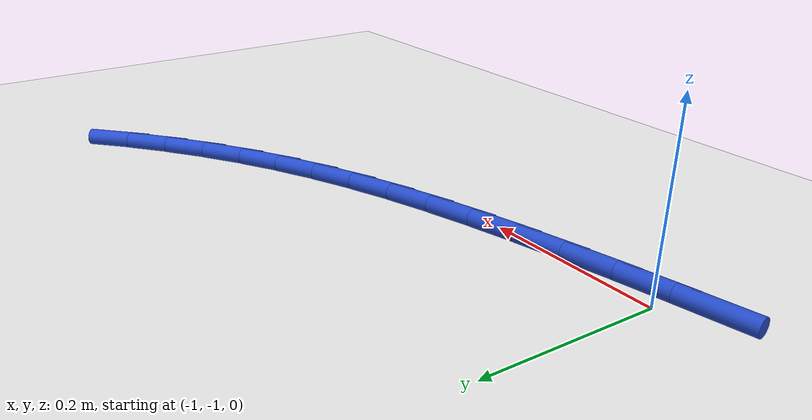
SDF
<sdf version="1.6">
 <world name="default">
  <model name="ground_plane">
   <static>1</static>
   <link name="link">
    <collision name="collision">
     <geometry><plane><normal>0 0 1</normal><size>100 100</size></plane></geometry>
     <surface><friction><ode><mu>100</mu><mu2>50</mu2></ode></friction></surface>
    </collision>
    <visual name="visual">
     <cast_shadows>0</cast_shadows>
     <geometry><plane><normal>0 0 1</normal><size>100 100</size></plane></geometry>
     <material>
      <script><uri>file://media/materials/scripts/gazebo.material</uri><name>Gazebo/WhiteGlow</name></script>
     </material>
    </visual>
   </link>
  </model>
  <model name="line">
   <link name="link_91">
    <pose>-1.0428500433935866 -1.0322535948756941 0.01 0 1.57 0.1760739674078798</pose>
    <collision name="collision">
     <geometry><cylinder><radius>0.01</radius><length>0.08</length></cylinder></geometry>
    </collision>
    <visual name="visual">
     <material>
      <script><name>Gazebo/Blue</name><uri>file://media/materials/scripts/gazebo.material</uri></script>
     </material>
     <geometry><cylinder><radius>0.01</radius><length>0.08</length></cylinder></geometry>
    </visual>
   </link>
   <link name="link_92">
    <pose>-0.9853075734768719 -1.0220158475698184 0.01 0 1.57 0.18663902751711337</pose>
    <collision name="collision">
     <geometry><cylinder><radius>0.01</radius><length>0.08</length></cylinder></geometry>
    </collision>
    <visual name="visual">
     <material>
      <script><name>Gazebo/Blue</name><uri>file://media/materials/scripts/gazebo.material</uri></script>
     </material>
     <geometry><cylinder><radius>0.01</radius><length>0.08</length></cylinder></geometry>
    </visual>
   </link>
   <link name="link_93">
    <pose>-0.9289475941057282 -1.0113730099068052 0.01 0 1.57 0.2026990869845861</pose>
    <collision name="collision">
     <geometry><cylinder><radius>0.01</radius><length>0.08</length></cylinder></geometry>
    </collision>
    <visual name="visual">
     <material>
      <script><name>Gazebo/Blue</name><uri>file://media/materials/scripts/gazebo.material</uri></script>
     </material>
     <geometry><cylinder><radius>0.01</radius><length>0.08</length></cylinder></geometry>
    </visual>
   </link>
   <link name="link_94">
    <pose>-0.8737443226644982 -1.000027546518124 0.01 0 1.57 0.22446915927239341</pose>
    <collision name="collision">
     <geometry><cylinder><radius>0.01</radius><length>0.08</length></cylinder></geometry>
    </collision>
    <visual name="visual">
     <material>
      <script><name>Gazebo/Blue</name><uri>file://media/materials/scripts/gazebo.material</uri></script>
     </material>
     <geometry><cylinder><radius>0.01</radius><length>0.08</length></cylinder></geometry>
    </visual>
   </link>
   <link name="link_95">
    <pose>-0.8196719765375219 -0.9876819220352449 0.01 0 1.57 0.2521004670283223</pose>
    <collision name="collision">
     <geometry><cylinder><radius>0.01</radius><length>0.08</length></cylinder></geometry>
    </collision>
    <visual name="visual">
     <material>
      <script><name>Gazebo/Blue</name><uri>file://media/materials/scripts/gazebo.material</uri></script>
     </material>
     <geometry><cylinder><radius>0.01</radius><length>0.08</length></cylinder></geometry>
    </visual>
   </link>
   <link name="link_96">
    <pose>-0.76670477310914 -0.9740386010896376 0.01 0 1.57 0.28565091467254655</pose>
    <collision name="collision">
     <geometry><cylinder><radius>0.01</radius><length>0.08</length></cylinder></geometry>
    </collision>
    <visual name="visual">
     <material>
      <script><name>Gazebo/Blue</name><uri>file://media/materials/scripts/gazebo.material</uri></script>
     </material>
     <geometry><cylinder><radius>0.01</radius><length>0.08</length></cylinder></geometry>
    </visual>
   </link>
   <link name="link_97">
    <pose>-0.7148169297636946 -0.9588000483127717 0.01 0 1.57 0.3250499615484393</pose>
    <collision name="collision">
     <geometry><cylinder><radius>0.01</radius><length>0.08</length></cylinder></geometry>
    </collision>
    <visual name="visual">
     <material>
      <script><name>Gazebo/Blue</name><uri>file://media/materials/scripts/gazebo.material</uri></script>
     </material>
     <geometry><cylinder><radius>0.01</radius><length>0.08</length></cylinder></geometry>
    </visual>
   </link>
   <link name="link_98">
    <pose>-0.6639826638855261 -0.9416687283361168 0.01 0 1.57 0.37006155643512867</pose>
    <collision name="collision">
     <geometry><cylinder><radius>0.01</radius><length>0.08</length></cylinder></geometry>
    </collision>
    <visual name="visual">
     <material>
      <script><name>Gazebo/Blue</name><uri>file://media/materials/scripts/gazebo.material</uri></script>
     </material>
     <geometry><cylinder><radius>0.01</radius><length>0.08</length></cylinder></geometry>
    </visual>
   </link>
   <link name="link_99">
    <pose>-0.6141761928589762 -0.9223471057911435 0.01 0 1.57 0.4202515895418626</pose>
    <collision name="collision">
     <geometry><cylinder><radius>0.01</radius><length>0.08</length></cylinder></geometry>
    </collision>
    <visual name="visual">
     <material>
      <script><name>Gazebo/Blue</name><uri>file://media/materials/scripts/gazebo.material</uri></script>
     </material>
     <geometry><cylinder><radius>0.01</radius><length>0.08</length></cylinder></geometry>
    </visual>
   </link>
   <link name="link_100">
    <pose>-0.5653717340683845 -0.9005376453093206 0.01 0 1.57 0.4749687367432126</pose>
    <collision name="collision">
     <geometry><cylinder><radius>0.01</radius><length>0.08</length></cylinder></geometry>
    </collision>
    <visual name="visual">
     <material>
      <script><name>Gazebo/Blue</name><uri>file://media/materials/scripts/gazebo.material</uri></script>
     </material>
     <geometry><cylinder><radius>0.01</radius><length>0.08</length></cylinder></geometry>
    </visual>
   </link>
   <link name="link_101">
    <pose>-0.5175435048980939 -0.8759428115221183 0.01 0 1.57 0.5331243804033939</pose>
    <collision name="collision">
     <geometry><cylinder><radius>0.01</radius><length>0.08</length></cylinder></geometry>
    </collision>
    <visual name="visual">
     <material>
      <script><name>Gazebo/Blue</name><uri>file://media/materials/scripts/gazebo.material</uri></script>
     </material>
     <geometry><cylinder><radius>0.01</radius><length>0.08</length></cylinder></geometry>
    </visual>
   </link>
   <link name="link_102">
    <pose>-0.47067626257480644 -0.8482854348186019 0.01 0 1.57 0.5910781344507315</pose>
    <collision name="collision">
     <geometry><cylinder><radius>0.01</radius><length>0.08</length></cylinder></geometry>
    </collision>
    <visual name="visual">
     <material>
      <script><name>Gazebo/Blue</name><uri>file://media/materials/scripts/gazebo.material</uri></script>
     </material>
     <geometry><cylinder><radius>0.01</radius><length>0.08</length></cylinder></geometry>
    </visual>
   </link>
   <link name="link_103">
    <pose>-0.4248961707254403 -0.8175615800794284 0.01 0 1.57 0.64708517157358</pose>
    <collision name="collision">
     <geometry><cylinder><radius>0.01</radius><length>0.08</length></cylinder></geometry>
    </collision>
    <visual name="visual">
     <material>
      <script><name>Gazebo/Blue</name><uri>file://media/materials/scripts/gazebo.material</uri></script>
     </material>
     <geometry><cylinder><radius>0.01</radius><length>0.08</length></cylinder></geometry>
    </visual>
   </link>
   <link name="link_104">
    <pose>-0.3804304702905921 -0.7839626202361819 0.01 0 1.57 0.7017129202224932</pose>
    <collision name="collision">
     <geometry><cylinder><radius>0.01</radius><length>0.08</length></cylinder></geometry>
    </collision>
    <visual name="visual">
     <material>
      <script><name>Gazebo/Blue</name><uri>file://media/materials/scripts/gazebo.material</uri></script>
     </material>
     <geometry><cylinder><radius>0.01</radius><length>0.08</length></cylinder></geometry>
    </visual>
   </link>
   <link name="link_105">
    <pose>-0.3375085901210451 -0.7476841558404571 0.01 0 1.57 0.7555455302405422</pose>
    <collision name="collision">
     <geometry><cylinder><radius>0.01</radius><length>0.08</length></cylinder></geometry>
    </collision>
    <visual name="visual">
     <material>
      <script><name>Gazebo/Blue</name><uri>file://media/materials/scripts/gazebo.material</uri></script>
     </material>
     <geometry><cylinder><radius>0.01</radius><length>0.08</length></cylinder></geometry>
    </visual>
   </link>
  </model>
 </world>
</sdf>
